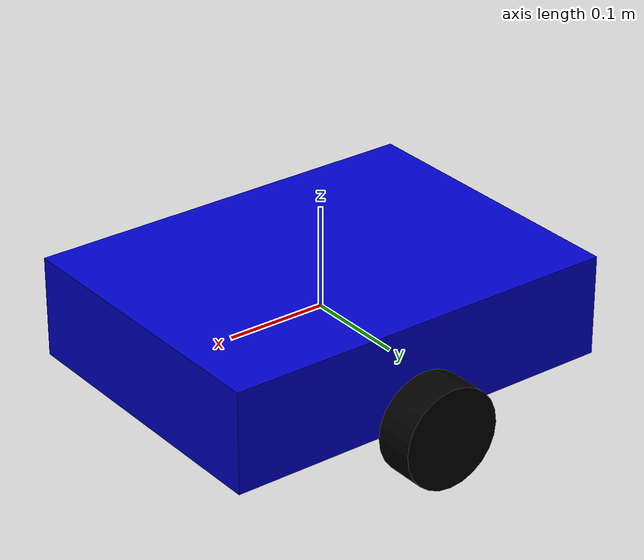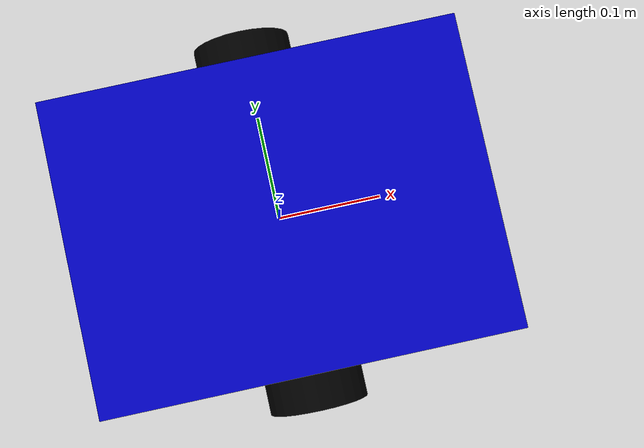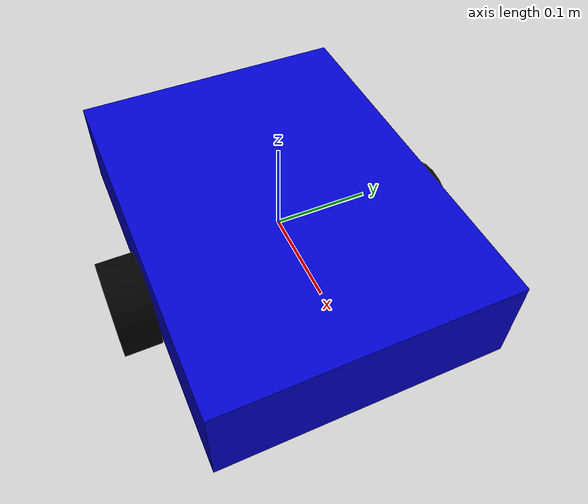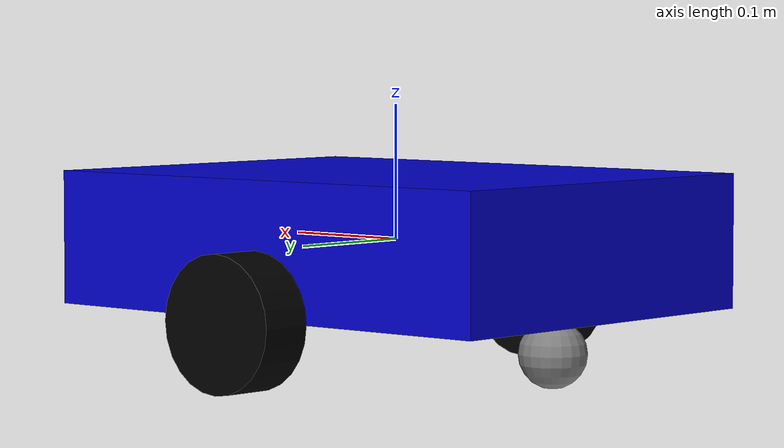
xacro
<?xml version="1.0"?>
<robot name="mobile_robot" xmlns:xacro="http://www.ros.org/wiki/xacro">

  <!-- Base link -->
  <link name="base_link">
	<visual>
	  <geometry>
		<box size="0.4 0.3 0.1"/>
	  </geometry>
	  <material name="blue">
		<color rgba="0 0 0.8 1"/>
	  </material>
	</visual>
	<collision>
	  <geometry>
		<box size="0.4 0.3 0.1"/>
	  </geometry>
	</collision>
	<inertial>
	  <mass value="5.0"/>
	  <inertia ixx="0.05" ixy="0" ixz="0"
			   iyy="0.05" iyz="0"
			   izz="0.05"/>
	</inertial>
  </link>

  <!-- Left wheel -->
  <link name="left_wheel">
	<visual>
	  <geometry>
		<cylinder radius="0.05" length="0.04"/>
	  </geometry>
	  <material name="black">
		<color rgba="0 0 0 1"/>
	  </material>
	</visual>
	<collision>
	  <geometry>
		<cylinder radius="0.05" length="0.04"/>
	  </geometry>
	</collision>
	<inertial>
	  <mass value="0.5"/>
	  <inertia ixx="0.001" ixy="0" ixz="0"
			   iyy="0.001" iyz="0"
			   izz="0.001"/>
	</inertial>
  </link>

  <joint name="left_wheel_joint" type="continuous">
	<parent link="base_link"/>
	<child link="left_wheel"/>
	<origin xyz="0.0 0.17 -0.05" rpy="-1.5707 0 0"/>
	<axis xyz="0 0 1"/>
  </joint>

  <!-- Right wheel -->
  <link name="right_wheel">
	<visual>
	  <geometry>
		<cylinder radius="0.05" length="0.04"/>
	  </geometry>
	  <material name="black">
		<color rgba="0 0 0 1"/>
	  </material>
	</visual>
	<collision>
	  <geometry>
		<cylinder radius="0.05" length="0.04"/>
	  </geometry>
	</collision>
	<inertial>
	  <mass value="0.5"/>
	  <inertia ixx="0.001" ixy="0" ixz="0"
			   iyy="0.001" iyz="0"
			   izz="0.001"/>
	</inertial>
  </link>

  <joint name="right_wheel_joint" type="continuous">
	<parent link="base_link"/>
	<child link="right_wheel"/>
	<origin xyz="0.0 -0.17 -0.05" rpy="-1.5707 0 0"/>
	<axis xyz="0 0 1"/>
  </joint>

  <!-- Caster wheel -->
  <link name="caster_wheel">
	<visual>
	  <geometry>
		<sphere radius="0.025"/>
	  </geometry>
	  <material name="grey">
		<color rgba="0.5 0.5 0.5 1"/>
	  </material>
	</visual>
	<collision>
	  <geometry>
		<sphere radius="0.025"/>
	  </geometry>
	</collision>
	<inertial>
	  <mass value="0.1"/>
	  <inertia ixx="0.0001" ixy="0" ixz="0"
			   iyy="0.0001" iyz="0"
			   izz="0.0001"/>
	</inertial>
  </link>

  <joint name="caster_joint" type="fixed">
	<parent link="base_link"/>
	<child link="caster_wheel"/>
	<origin xyz="-0.15 0 -0.075" rpy="0 0 0"/>
  </joint>

<!-- Gazebo differential drive plugin -->
  <gazebo>
	<plugin
	  filename="gz-sim-diff-drive-system"
	  name="gz::sim::systems::DiffDrive">
	  <left_joint>left_wheel_joint</left_joint>
	  <right_joint>right_wheel_joint</right_joint>
	  <wheel_separation>0.34</wheel_separation>
	  <wheel_radius>0.05</wheel_radius>
	  <topic>cmd_vel</topic>
	  <odom_topic>odom</odom_topic>
	  <frame_id>odom</frame_id>
	  <child_frame_id>base_link</child_frame_id>
	</plugin>
  </gazebo>

</robot>
